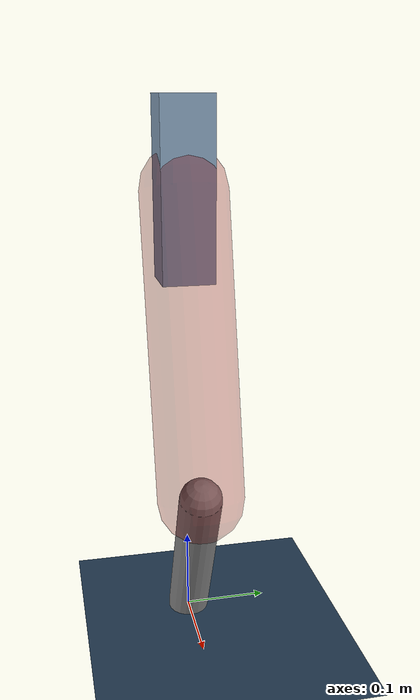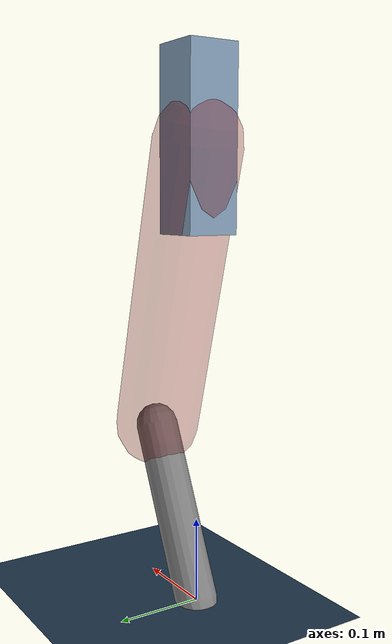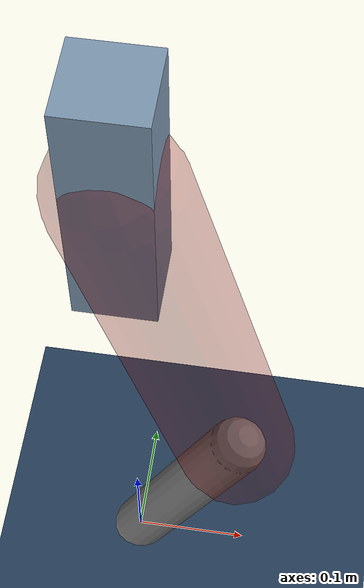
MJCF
<mujoco model="Hopper2D">
	<compiler inertiafromgeom="true" angle="radian" />
	<option timestep="0.001" integrator="implicit" cone="elliptic" solver="Newton" tolerance="1e-10" />

	<default>
		<geom contype="1" conaffinity="1" condim="3" friction="2 0.005 0.0001" solref="0.005 1" />
		<joint limited="true" damping="0.1" />
	</default>

	<asset>
		<texture name="skybox" type="skybox" builtin="gradient" rgb1=".4 .6 .8" rgb2="0 0 0" width="800" height="800" />
		<texture name="grid" type="2d" builtin="checker" rgb1=".1 .2 .3" rgb2=".2 .3 .4" width="300" height="300" mark="edge" markrgb=".2 .3 .4" />
		<material name="ground" texture="grid" texrepeat="1 1" texuniform="true" reflectance="0.1" />
		<material name="leg" rgba="0.5 0.6 0.7 1" />
	</asset>

	<worldbody>

		<geom name="floor" type="plane" size="5 5 0.25" material="ground" />

		<light directional="false" diffuse="0.8 0.8 0.8" specular="0.3 0.3 0.3" pos="0 0 2" dir="0 0 -1" />
		<light mode="targetbodycom" target="base" directional="false" diffuse="0.8 0.8 0.8" specular="0.3 0.3 0.3" pos="0 0 2" dir="0 0 -1" />

		<camera name="fixed" pos="0 -2 1" xyaxes="1 0 0 0 0 1" />
		<camera name="tracking" mode="trackcom" pos="0 -3 1" />

		<body name="root" pos="0 0 0.5278437051242546">
			<joint name="slide_x" type="slide" axis="1 0 0" range="-100 100" />
			<joint name="slide_z" type="slide" axis="0 0 1" range="0 10" />

			<body name="base" pos="0 0 0">
				<geom name="torso" type="box" size="0.03 0.03 0.1" mass="1.5590000000000002" material="leg" />

				<body name="link1" pos="0 0 0" euler="0 1.3107540332692822 0">
					<joint type="hinge" axis="0 -1 0" pos="0 0 0" name="hinge1" limited="true" range="-3.14 3.14" stiffness="0" damping="0.1" />
					<geom name="thigh" type="capsule" fromto="0 0 0 0.34501525241621783 0 0" size="0.05" rgba="0.5 0 0 0.3" mass="1.11264270676541" />

					<body name="link2" pos="0.34501525241621783 0 0" euler="0 0.6880941441283813 0">
						<joint type="hinge" axis="0 -1 0" pos="0 0 0" name="hinge2" limited="true" range="-3.14 3.14" stiffness="0" damping="0.1" />
						<geom name="shank" type="capsule" fromto="0 0 0 0.21370990467735002 0 0" size="0.025" mass="0.41243891420961504" />

					</body>
				</body>
			</body>
		</body>
	</worldbody>

	<actuator>
		<motor name="torque1" joint="hinge1" ctrlrange="-61.28508247426784 61.28508247426784" ctrllimited="true" gear="1" />
		<motor name="torque2" joint="hinge2" ctrlrange="-12.083389518254526 12.083389518254526" ctrllimited="true" gear="1" />
	</actuator>
</mujoco>
